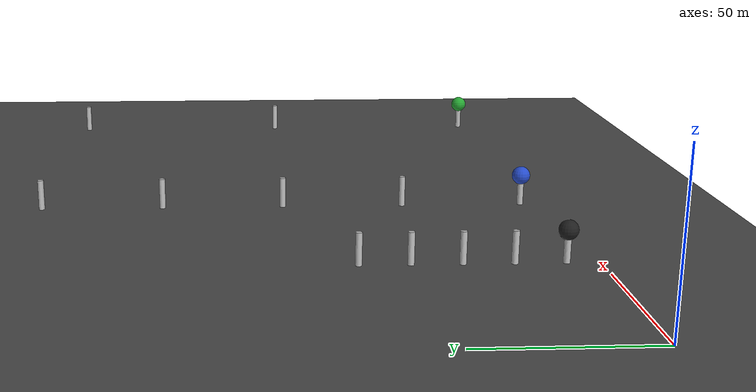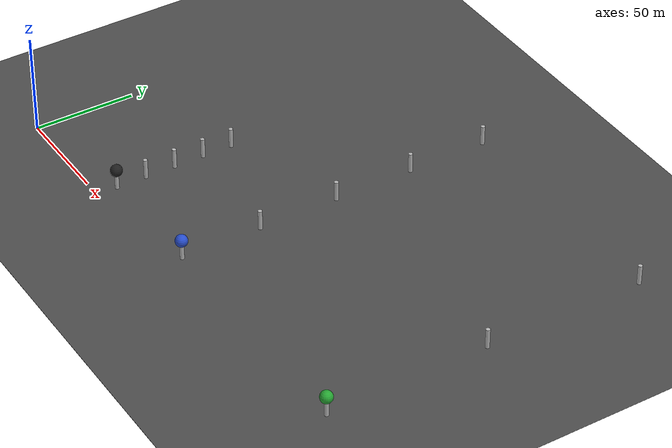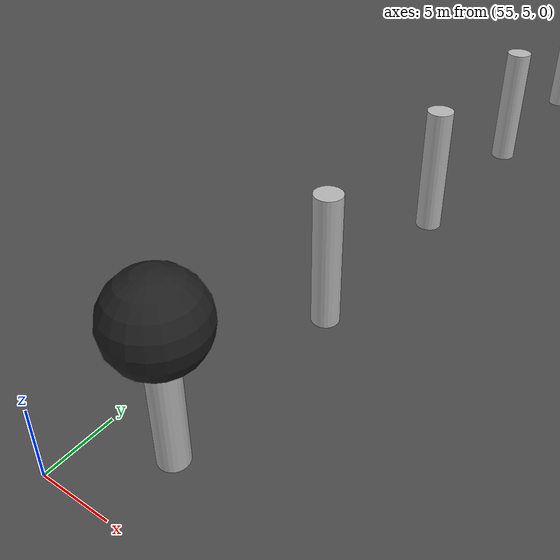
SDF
<sdf version="1.5">
 <world name="default">
  <scene>
   <grid>true</grid>
   <origin_visual>true</origin_visual>
   <fog>
    <type>linear</type>
    <color>0.1 0.1 0.1 1</color>
    <density>1</density>
    <start>100</start>
    <end>1000</end>
   </fog>
   <sky><time>10</time><clouds><speed>10</speed></clouds></sky>
  </scene>
  <physics name="default_physics" default="0" type="ode">
   <gravity>0 0 -9.8066</gravity>
   <max_step_size>0.004</max_step_size>
   <real_time_factor>1</real_time_factor>
   <real_time_update_rate>250</real_time_update_rate>
   <magnetic_field>6.0e-6 2.3e-5 -4.2e-5</magnetic_field>
  </physics>
  <include><uri>model://sun</uri></include>
  <include><name>ground_plane</name><uri>model://ground_asphalt</uri></include>
  <include><pose>0 10 0 0 0 0</pose><uri>model://columns</uri></include>
 </world>
</sdf>

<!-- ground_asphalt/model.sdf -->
<sdf version="1.5">
  <model name="ground_asphalt">
    <static>true</static>
    <link name="link">
      <collision name="collision">
        <geometry>
          <box><size>1000 1000 0.1</size></box>
        </geometry>
      </collision>
      <visual name="visual">
        <cast_shadows>false</cast_shadows>
        <geometry>
          <box><size>1000 1000 0.1</size></box>
        </geometry>
        <material>
          <script>
            <uri>model://ground_asphalt/materials/scripts</uri>
            <uri>model://ground_asphalt/materials/textures</uri>
            <name>vrc/asphalt</name>
          </script>
        </material>
      </visual>
    </link>
  </model>
</sdf>

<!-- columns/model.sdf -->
<sdf version="1.5">
  <model name="columns">
    <static>true</static>

    <link name="black">
      <visual name="visual">
        <cast_shadows>0</cast_shadows>
        <pose>60 0 10 0 0 0</pose>
        <geometry>
          <sphere><radius>3.0</radius></sphere>
        </geometry>
        <material>
          <script>
            <name>Gazebo/Black</name>
          </script>
        </material>
      </visual>
    </link>
    <include>
      <name>column11</name>
      <pose>60 0 0 0 0 0</pose>
      <uri>model://column</uri>
    </include>
    <include>
      <name>column12</name>
      <pose>60 15 0 0 0 0</pose>
      <uri>model://column</uri>
    </include>
    <include>
      <name>column13</name>
      <pose>60 30 0 0 0 0</pose>
      <uri>model://column</uri>
    </include>
    <include>
      <name>column14</name>
      <pose>60 45 0 0 0 0</pose>
      <uri>model://column</uri>
    </include>
    <include>
      <name>column15</name>
      <pose>60 60 0 0 0 0</pose>
      <uri>model://column</uri>
    </include>

    <link name="blue">
      <visual name="visual">
        <cast_shadows>0</cast_shadows>
        <pose>120 0 10 0 0 0</pose>
        <geometry>
          <sphere><radius>3.0</radius></sphere>
        </geometry>
        <material>
          <script>
            <name>Gazebo/Blue</name>
          </script>
        </material>
      </visual>
    </link>

    <include>
      <name>column21</name>
      <pose>120 0 0 0 0 0</pose>
      <uri>model://column</uri>
    </include>
    <include>
      <name>column22</name>
      <pose>120 40 0 0 0 0</pose>
      <uri>model://column</uri>
    </include>
    <include>
      <name>column23</name>
      <pose>120 80 0 0 0 0</pose>
      <uri>model://column</uri>
    </include>
    <include>
      <name>column24</name>
      <pose>120 120 0 0 0 0</pose>
      <uri>model://column</uri>
    </include>
    <include>
      <name>column25</name>
      <pose>120 160 0 0 0 0</pose>
      <uri>model://column</uri>
    </include>

    <link name="green">
      <visual name="visual">
        <cast_shadows>0</cast_shadows>
        <pose>240 0 10 0 0 0</pose>
        <geometry>
          <sphere><radius>3.0</radius></sphere>
        </geometry>
        <material>
          <script>
            <name>Gazebo/Green</name>
          </script>
        </material>
      </visual>
    </link>
    <include>
      <name>column26</name>
      <pose>240 0 0 0 0 0</pose>
      <uri>model://column</uri>
    </include>
    <include>
      <name>column27</name>
      <pose>240 80 0 0 0 0</pose>
      <uri>model://column</uri>
    </include>
    <include>
      <name>column28</name>
      <pose>240 160 0 0 0 0</pose>
      <uri>model://column</uri>
    </include>
  </model>
</sdf>

<!-- vim: set et fenc=utf-8 ft=xml ff=unix sts=0 sw=2 ts=2 : -->

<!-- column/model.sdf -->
<sdf version="1.5">
  <model name="column">
    <static>true</static>
    <link name="link">
      <pose>0 0 5 0 0 0</pose>
      <collision name="collision">
        <geometry>
			<cylinder>
				<radius>1</radius>
				<length>10</length>
			</cylinder>
        </geometry>
      </collision>
      <visual name="visual">
        <geometry>
			<cylinder>
				<radius>1</radius>
				<length>10</length>
			</cylinder>
        </geometry>
        <material>
          <script>
            <uri>model://column/materials/scripts</uri>
            <uri>model://column/materials/textures</uri>
            <name>vrc/granite</name>
          </script>
        </material>
      </visual>
    </link>
  </model>
</sdf>
